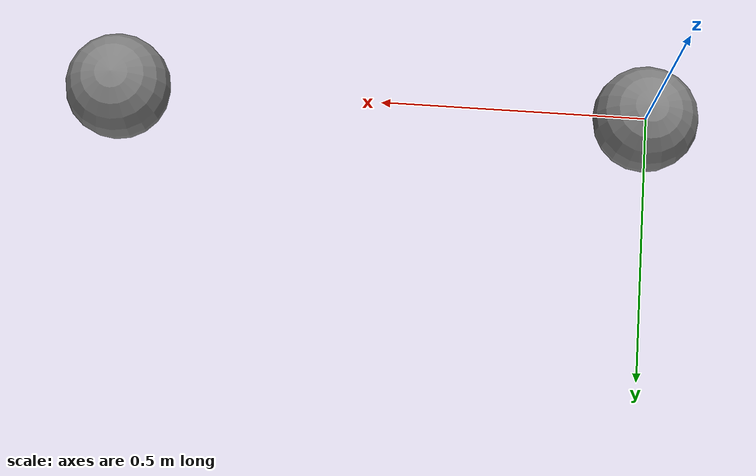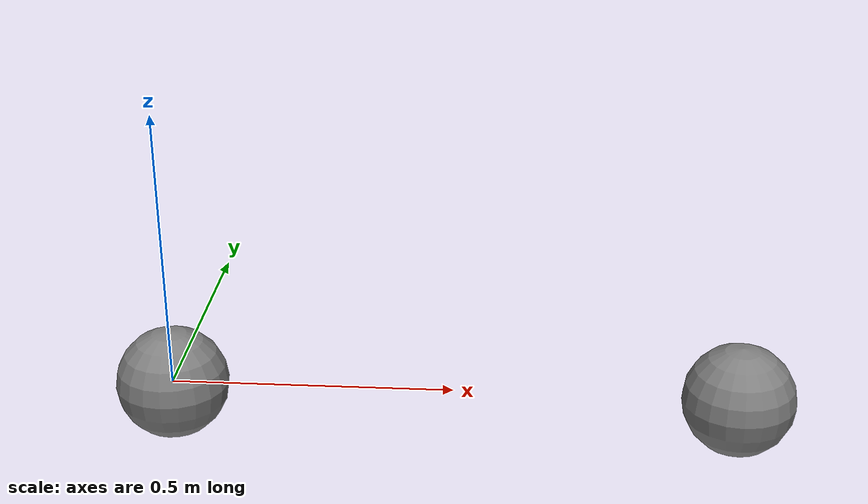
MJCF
<mujoco>
  <option iterations="4" ls_iterations="4"/>
  <worldbody>
    <body pos="0 0 0">
      <joint name="hinge0" type="hinge" axis="1 0 0"/>
      <geom type="sphere" size=".1"/>
      <body>
        <joint name="hinge1" type="hinge" axis="1 0 0"/>
        <geom type="sphere" size=".1"/>
        <body>
          <joint name="hinge2" type="hinge" axis="1 0 0"/>
          <geom type="sphere" size=".1"/>
        </body>
      </body>
    </body>
    <body pos="1 0 0">
      <joint name="hinge3" type="hinge" axis="1 0 0"/>
      <geom type="sphere" size=".1"/>
      <body>
        <joint name="hinge4" type="hinge" axis="1 0 0"/>
        <geom type="sphere" size=".1"/>
        <body>
          <joint name="hinge5" type="hinge" axis="1 0 0"/>
          <geom type="sphere" size=".1"/>
        </body>
      </body>
    </body>
  </worldbody>
  <actuator>
    <position joint="hinge0" kp="1" kv="2"/>
    <position joint="hinge3" kp="7" kv="8"/>
    <position joint="hinge4" kp="9" kv="10"/>
    <position joint="hinge5" kp="11" kv="12"/>
    <position joint="hinge2" kp="5" kv="6"/>
    <position joint="hinge1" kp="3" kv="4"/>
  </actuator>
  <keyframe>
    <key ctrl="1 2 3 4 5 6"/>
  </keyframe>
</mujoco>
